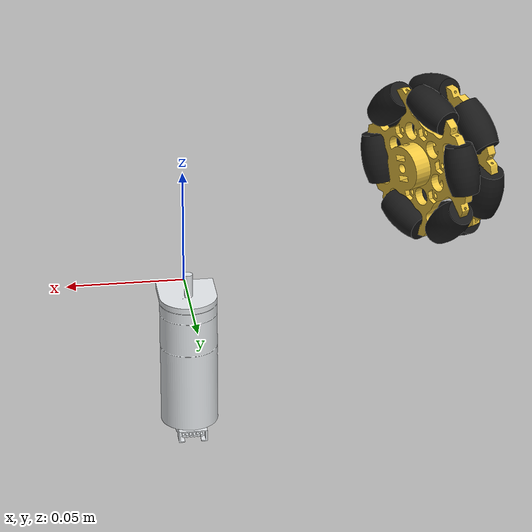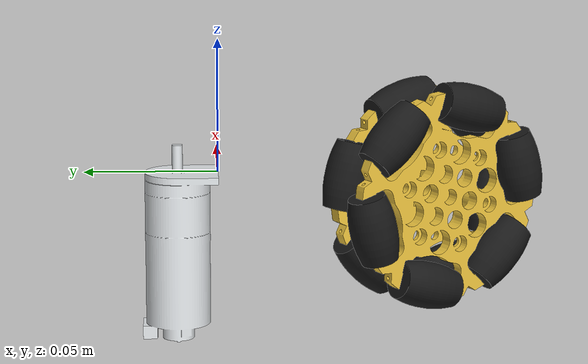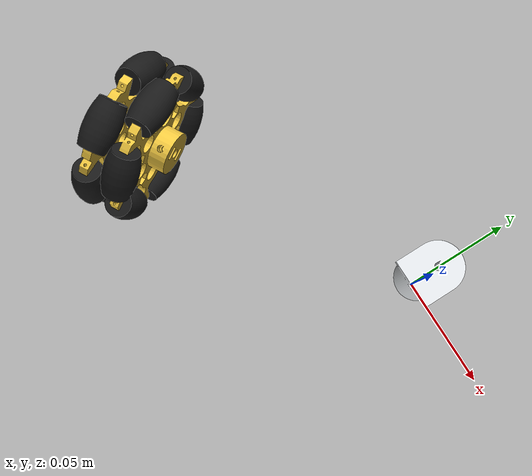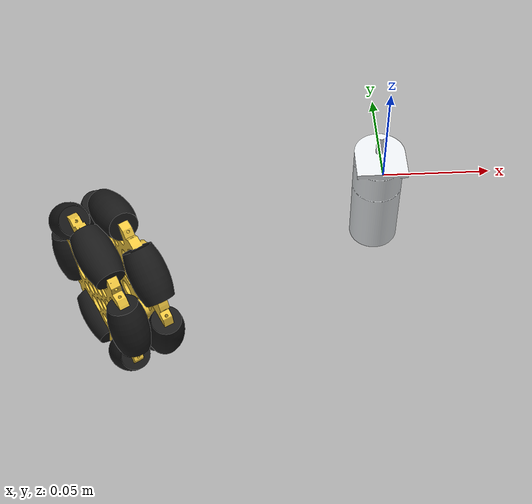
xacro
<?xml version="1.0"?>
<robot xmlns:xacro="http://www.ros.org/wiki/xacro" name="omnibot">
<xacro:include filename="$(find omnibot_description)/urdf/omnibot_gazebo.xacro"/>
<xacro:include filename="$(find omnibot_description)/urdf/omnibot_ros2_control.xacro"/>
<link name="base_footprint"></link>
<joint name="base_footprint_to_base" type="fixed">
<parent link="base_footprint"/>
<child link="motor" />
<origin rpy="0.0 0 0" xyz="0 0 0"/>
</joint>
<link name="motor">
<visual>
<origin xyz="0 0 0" rpy="0 -0 0" />
<geometry>
<mesh filename="package://omnibot_description/meshes/motor.stl"/>
</geometry>
<material name="motor_material">
<color rgba="0.90196078431372550543 0.91764705882352937127 0.92941176470588238168 1.0"/>
</material>
</visual>
<collision>
<origin xyz="0 0 0" rpy="0 -0 0" />
<geometry>
<mesh filename="package://omnibot_description/meshes/motor.stl"/>
</geometry>
</collision>
<inertial>
<origin xyz="-0.083332409879302099531 -0.048114905775283510481 0.01775333870778863371" rpy="0 0 0"/>
<mass value="0.11724467889003906129" />
<inertia ixx="1.7177316862696019069e-05" ixy="-1.3512284026326213212e-05"  ixz="2.9006028519083257192e-07" iyy="3.2785367539480673885e-05" iyz="1.65594967207300257e-07" izz="4.052562608525466729e-05" />
</inertial>
</link>

<link name="wheel">
<visual>
<origin xyz="0 0 0" rpy="0 -0 0" />
<geometry>
<mesh filename="package://omnibot_description/meshes/wheel.stl"/>
</geometry>
<material name="wheel_material">
<color rgba="0.93817637743758997004 0.77716387406765596868 0.24699191181720780985 1.0"/>
</material>
</visual>
<collision>
<origin xyz="0 0 0" rpy="0 -0 0" />
<geometry>
<mesh filename="package://omnibot_description/meshes/wheel.stl"/>
</geometry>
</collision>
<inertial>
<origin xyz="-9.4080772161778185937e-06 -8.7940150929699637965e-06 -0.015171785857257018976" rpy="0 0 0"/>
<mass value="0.019326877652137152558" />
<inertia ixx="5.4075632337239984917e-06" ixy="-8.0312945992185011218e-08"  ixz="-1.2568956473773278438e-09" iyy="5.6885776482218881875e-06" iyz="1.916775893006806247e-09" izz="8.7138700444652767682e-06" />
</inertial>
</link>

<link name="roller">
<visual>
<origin xyz="0 0 0" rpy="0 -0 0" />
<geometry>
<mesh filename="package://omnibot_description/meshes/roller.stl"/>
</geometry>
<material name="roller_material">
<color rgba="0.098039215686274508443 0.098039215686274508443 0.098039215686274508443 1.0"/>
</material>
</visual>
<collision>
<origin xyz="0 0 0" rpy="0 -0 0" />
<geometry>
<mesh filename="package://omnibot_description/meshes/roller.stl"/>
</geometry>
</collision>
<inertial>
<origin xyz="4.0756121985606166103e-11 8.4957113535403680068e-11 2.4283847745025522076e-11" rpy="0 0 0"/>
<mass value="0.0037899803393768713086" />
<inertia ixx="1.8303635244743848899e-07" ixy="4.2716078955510298828e-16"  ixz="-1.7514569824195878747e-15" iyy="1.8303636075213773613e-07" iyz="-3.3429143070510763521e-15" izz="9.80970620806389343e-08" />
</inertial>
</link>

<joint name="roller1_1" type="continuous">
<origin xyz="0.020681564833508855189 -0.02111942119757877559 -0.010000000285350446605" rpy="-2.3666656417924341049 -1.5707963267948408248 0" />
<parent link="wheel" />
<child link="roller" />
<axis xyz="0 0 1"/>
<limit effort="1" velocity="20" />
<joint_properties friction="0.0"/>
</joint>

<link name="roller_2">
<visual>
<origin xyz="0 0 0" rpy="0 -0 0" />
<geometry>
<mesh filename="package://omnibot_description/meshes/roller.stl"/>
</geometry>
<material name="roller_2_material">
<color rgba="0.098039215686274508443 0.098039215686274508443 0.098039215686274508443 1.0"/>
</material>
</visual>
<collision>
<origin xyz="0 0 0" rpy="0 -0 0" />
<geometry>
<mesh filename="package://omnibot_description/meshes/roller.stl"/>
</geometry>
</collision>
<inertial>
<origin xyz="4.0756118516159214149e-11 8.4957103127062837132e-11 2.4283847745025522076e-11" rpy="0 0 0"/>
<mass value="0.0037899803393768713086" />
<inertia ixx="1.8303635244743848899e-07" ixy="4.2716081400933962448e-16"  ixz="-1.7514569930109819052e-15" iyy="1.8303636075213778907e-07" iyz="-3.3429142993269262604e-15" izz="9.8097062080638907831e-08" />
</inertial>
</link>

<joint name="roller1_2" type="continuous">
<origin xyz="-0.0082858436691605717728 -0.028375035936993940611 -0.010000003715208427568" rpy="1.5707963267948643615 0.039422984638921319822 -1.8430676189349126659" />
<parent link="wheel" />
<child link="roller_2" />
<axis xyz="0 0 1"/>
<limit effort="1" velocity="20" />
<joint_properties friction="0.0"/>
</joint>

<link name="roller_3">
<visual>
<origin xyz="0 0 0" rpy="0 -0 0" />
<geometry>
<mesh filename="package://omnibot_description/meshes/roller.stl"/>
</geometry>
<material name="roller_3_material">
<color rgba="0.098039215686274508443 0.098039215686274508443 0.098039215686274508443 1.0"/>
</material>
</visual>
<collision>
<origin xyz="0 0 0" rpy="0 -0 0" />
<geometry>
<mesh filename="package://omnibot_description/meshes/roller.stl"/>
</geometry>
</collision>
<inertial>
<origin xyz="4.0756108107818351826e-11 8.4957117004850644947e-11 2.4283842540855090915e-11" rpy="0 0 0"/>
<mass value="0.0037899803393768713086" />
<inertia ixx="1.8303635244743848899e-07" ixy="4.2716079021680908052e-16"  ixz="-1.7514569817847873628e-15" iyy="1.8303636075213778907e-07" iyz="-3.3429143100435409156e-15" izz="9.80970620806389343e-08" />
</inertial>
</link>

<joint name="roller1_3" type="continuous">
<origin xyz="0.028630754033684657073 0.00735114980477863042 -0.010000000481622278725" rpy="-1.5707963267948972241 -0.47506888631430066461 -2.8902645323988251924" />
<parent link="wheel" />
<child link="roller_3" />
<axis xyz="0 0 1"/>
<limit effort="1" velocity="20" />
<joint_properties friction="0.0"/>
</joint>

<link name="roller_4">
<visual>
<origin xyz="0 0 0" rpy="0 -0 0" />
<geometry>
<mesh filename="package://omnibot_description/meshes/roller.stl"/>
</geometry>
<material name="roller_4_material">
<color rgba="0.098039215686274508443 0.098039215686274508443 0.098039215686274508443 1.0"/>
</material>
</visual>
<collision>
<origin xyz="0 0 0" rpy="0 -0 0" />
<geometry>
<mesh filename="package://omnibot_description/meshes/roller.stl"/>
</geometry>
</collision>
<inertial>
<origin xyz="4.0756121985606166103e-11 8.4957103127062837132e-11 2.4283849479748998053e-11" rpy="0 0 0"/>
<mass value="0.0037899803393768713086" />
<inertia ixx="1.8303635244743848899e-07" ixy="4.2716081400933962448e-16"  ixz="-1.7514569930109819052e-15" iyy="1.8303636075213778907e-07" iyz="-3.3429142993269262604e-15" izz="9.8097062080638907831e-08" />
</inertial>
</link>

<joint name="roller1_4" type="continuous">
<origin xyz="0.0079490519369558119284 0.028470515462359964609 -0.0099999970627584200411" rpy="1.5707963267948643615 0.039422984638921319822 -1.8430676189349126659" />
<parent link="wheel" />
<child link="roller_4" />
<axis xyz="0 0 1"/>
<limit effort="1" velocity="20" />
<joint_properties friction="0.0"/>
</joint>

<link name="roller_5">
<visual>
<origin xyz="0 0 0" rpy="0 -0 0" />
<geometry>
<mesh filename="package://omnibot_description/meshes/roller.stl"/>
</geometry>
<material name="roller_5_material">
<color rgba="0.098039215686274508443 0.098039215686274508443 0.098039215686274508443 1.0"/>
</material>
</visual>
<collision>
<origin xyz="0 0 0" rpy="0 -0 0" />
<geometry>
<mesh filename="package://omnibot_description/meshes/roller.stl"/>
</geometry>
</collision>
<inertial>
<origin xyz="4.0756115046712262196e-11 8.4957103127062824208e-11 2.4283854683919425983e-11" rpy="0 0 0"/>
<mass value="0.0037899803393768713086" />
<inertia ixx="1.8303635244743848899e-07" ixy="4.2716080854478915115e-16"  ixz="-1.7514569891076034829e-15" iyy="1.8303636075213773613e-07" iyz="-3.3429142971992106269e-15" izz="9.80970620806389343e-08" />
</inertial>
</link>

<joint name="roller1_5" type="continuous">
<origin xyz="-0.0079173874319016183249 0.028356888222940322686 -0.024199999101467722928" rpy="1.5707963267948528152 -0.035629031643070047108 1.8430678811939340545" />
<parent link="wheel" />
<child link="roller_5" />
<axis xyz="0 0 1"/>
<limit effort="1" velocity="20" />
<joint_properties friction="0.0"/>
</joint>

<link name="roller_6">
<visual>
<origin xyz="0 0 0" rpy="0 -0 0" />
<geometry>
<mesh filename="package://omnibot_description/meshes/roller.stl"/>
</geometry>
<material name="roller_6_material">
<color rgba="0.098039215686274508443 0.098039215686274508443 0.098039215686274508443 1.0"/>
</material>
</visual>
<collision>
<origin xyz="0 0 0" rpy="0 -0 0" />
<geometry>
<mesh filename="package://omnibot_description/meshes/roller.stl"/>
</geometry>
</collision>
<inertial>
<origin xyz="4.0756108324658792785e-11 8.4957130882638452761e-11 2.4283856418642898729e-11" rpy="0 0 0"/>
<mass value="0.0037899803393768713086" />
<inertia ixx="1.8303635244743843605e-07" ixy="4.2716084048573347974e-16"  ixz="-1.7514569913609862364e-15" iyy="1.8303636075213778907e-07" iyz="-3.3429143316136009109e-15" izz="9.80970620806389343e-08" />
</inertial>
</link>

<joint name="roller1_6" type="continuous">
<origin xyz="-0.020681651273562914189 0.02111933866479353411 -0.010000000622266469463" rpy="1.5707963267948510389 0.3237658697658820639 -0.79586931499757518349" />
<parent link="wheel" />
<child link="roller_6" />
<axis xyz="0 0 1"/>
<limit effort="1" velocity="20" />
<joint_properties friction="0.0"/>
</joint>

<link name="roller_7">
<visual>
<origin xyz="0 0 0" rpy="0 -0 0" />
<geometry>
<mesh filename="package://omnibot_description/meshes/roller.stl"/>
</geometry>
<material name="roller_7_material">
<color rgba="0.098039215686274508443 0.098039215686274508443 0.098039215686274508443 1.0"/>
</material>
</visual>
<collision>
<origin xyz="0 0 0" rpy="0 -0 0" />
<geometry>
<mesh filename="package://omnibot_description/meshes/roller.stl"/>
</geometry>
</collision>
<inertial>
<origin xyz="4.0756108107818358288e-11 8.4957089249275029318e-11 2.4283846010302052562e-11" rpy="0 0 0"/>
<mass value="0.0037899803393768713086" />
<inertia ixx="1.8303635244743848899e-07" ixy="4.27160807953453889e-16"  ixz="-1.7514569860326745559e-15" iyy="1.8303636075213778907e-07" iyz="-3.3429143076502848406e-15" izz="9.809706208063898724e-08" />
</inertial>
</link>

<joint name="roller1_7" type="continuous">
<origin xyz="-0.028516458158707243264 0.0073218567028522536788 -0.02419999957345192465" rpy="1.5707963267947924191 0.4998755173783210326 2.8902650095730839652" />
<parent link="wheel" />
<child link="roller_7" />
<axis xyz="0 0 1"/>
<limit effort="1" velocity="20" />
<joint_properties friction="0.0"/>
</joint>

<link name="roller_8">
<visual>
<origin xyz="0 0 0" rpy="0 -0 0" />
<geometry>
<mesh filename="package://omnibot_description/meshes/roller.stl"/>
</geometry>
<material name="roller_8_material">
<color rgba="0.098039215686274508443 0.098039215686274508443 0.098039215686274508443 1.0"/>
</material>
</visual>
<collision>
<origin xyz="0 0 0" rpy="0 -0 0" />
<geometry>
<mesh filename="package://omnibot_description/meshes/roller.stl"/>
</geometry>
</collision>
<inertial>
<origin xyz="4.0756115046712255733e-11 8.4957103127062824208e-11 2.4283852949195953238e-11" rpy="0 0 0"/>
<mass value="0.0037899803393768713086" />
<inertia ixx="1.8303635244743848899e-07" ixy="4.2716078518960338886e-16"  ixz="-1.7514569807358372422e-15" iyy="1.8303636075213773613e-07" iyz="-3.3429142987394990152e-15" izz="9.80970620806389343e-08" />
</inertial>
</link>

<joint name="roller1_8" type="continuous">
<origin xyz="-0.02851643393617246669 -0.0073217973661822786241 -0.010000001453654761008" rpy="-1.5707963267947111508 -0.47506888631359656117 -2.8902645323989122339" />
<parent link="wheel" />
<child link="roller_8" />
<axis xyz="0 0 1"/>
<limit effort="1" velocity="20" />
<joint_properties friction="0.0"/>
</joint>

<link name="roller_9">
<visual>
<origin xyz="0 0 0" rpy="0 -0 0" />
<geometry>
<mesh filename="package://omnibot_description/meshes/roller.stl"/>
</geometry>
<material name="roller_9_material">
<color rgba="0.098039215686274508443 0.098039215686274508443 0.098039215686274508443 1.0"/>
</material>
</visual>
<collision>
<origin xyz="0 0 0" rpy="0 -0 0" />
<geometry>
<mesh filename="package://omnibot_description/meshes/roller.stl"/>
</geometry>
</collision>
<inertial>
<origin xyz="4.0756108107818358288e-11 8.4957103127062837132e-11 2.4283852949195953238e-11" rpy="0 0 0"/>
<mass value="0.0037899803393768713086" />
<inertia ixx="1.8303635244743848899e-07" ixy="4.2716081252639028129e-16"  ixz="-1.7514569804702362556e-15" iyy="1.8303636075213778907e-07" iyz="-3.3429142988320809143e-15" izz="9.80970620806389343e-08" />
</inertial>
</link>

<joint name="roller1_9" type="continuous">
<origin xyz="-0.020599082119815405323 -0.021035064443091409936 -0.024199998418290208368" rpy="1.5707963267949525132 -0.33636312788316474753 0.79586976703607825723" />
<parent link="wheel" />
<child link="roller_9" />
<axis xyz="0 0 1"/>
<limit effort="1" velocity="20" />
<joint_properties friction="0.0"/>
</joint>

<link name="roller_10">
<visual>
<origin xyz="0 0 0" rpy="0 -0 0" />
<geometry>
<mesh filename="package://omnibot_description/meshes/roller.stl"/>
</geometry>
<material name="roller_10_material">
<color rgba="0.098039215686274508443 0.098039215686274508443 0.098039215686274508443 1.0"/>
</material>
</visual>
<collision>
<origin xyz="0 0 0" rpy="0 -0 0" />
<geometry>
<mesh filename="package://omnibot_description/meshes/roller.stl"/>
</geometry>
</collision>
<inertial>
<origin xyz="4.0756118516159207687e-11 8.4957075371487221503e-11 2.4283849479749001284e-11" rpy="0 0 0"/>
<mass value="0.0037899803393768713086" />
<inertia ixx="1.8303635244743843605e-07" ixy="4.2716080311549494243e-16"  ixz="-1.7514569794927228148e-15" iyy="1.8303636075213778907e-07" iyz="-3.3429142912277513e-15" izz="9.80970620806389343e-08" />
</inertial>
</link>

<joint name="roller1_10" type="continuous">
<origin xyz="0.0079173979793267165728 -0.028356884977344593013 -0.024199999508979525009" rpy="1.5707963267949405228 0.03562903164307248266 -1.2985247723958603938" />
<parent link="wheel" />
<child link="roller_10" />
<axis xyz="0 0 1"/>
<limit effort="1" velocity="20" />
<joint_properties friction="0.0"/>
</joint>

<link name="roller_11">
<visual>
<origin xyz="0 0 0" rpy="0 -0 0" />
<geometry>
<mesh filename="package://omnibot_description/meshes/roller.stl"/>
</geometry>
<material name="roller_11_material">
<color rgba="0.098039215686274508443 0.098039215686274508443 0.098039215686274508443 1.0"/>
</material>
</visual>
<collision>
<origin xyz="0 0 0" rpy="0 -0 0" />
<geometry>
<mesh filename="package://omnibot_description/meshes/roller.stl"/>
</geometry>
</collision>
<inertial>
<origin xyz="4.0756121985606172565e-11 8.4957103127062837132e-11 2.4283852949195946775e-11" rpy="0 0 0"/>
<mass value="0.0037899803393768713086" />
<inertia ixx="1.8303635244743859487e-07" ixy="4.2716080665760632879e-16"  ixz="-1.7514569880785997103e-15" iyy="1.8303636075213778907e-07" iyz="-3.3429143104060729886e-15" izz="9.80970620806389343e-08" />
</inertial>
</link>

<joint name="roller1_11" type="continuous">
<origin xyz="0.028516471920458755923 -0.0073217858682538168591 -0.024199999328584992364" rpy="1.5707963267949687225 0.49987551737898944237 2.8902650095731661217" />
<parent link="wheel" />
<child link="roller_11" />
<axis xyz="0 0 1"/>
<limit effort="1" velocity="20" />
<joint_properties friction="0.0"/>
</joint>

<link name="roller_12">
<visual>
<origin xyz="0 0 0" rpy="0 -0 0" />
<geometry>
<mesh filename="package://omnibot_description/meshes/roller.stl"/>
</geometry>
<material name="roller_12_material">
<color rgba="0.098039215686274508443 0.098039215686274508443 0.098039215686274508443 1.0"/>
</material>
</visual>
<collision>
<origin xyz="0 0 0" rpy="0 -0 0" />
<geometry>
<mesh filename="package://omnibot_description/meshes/roller.stl"/>
</geometry>
</collision>
<inertial>
<origin xyz="4.0756115914074019571e-11 8.4957130882638439836e-11 2.428385121447247403e-11" rpy="0 0 0"/>
<mass value="0.0037899803393768713086" />
<inertia ixx="1.8303635244743859487e-07" ixy="4.2716081974557339914e-16"  ixz="-1.7514569668193931157e-15" iyy="1.8303636075213773613e-07" iyz="-3.3429143129522359451e-15" izz="9.80970620806389343e-08" />
</inertial>
</link>

<joint name="roller1_" type="continuous">
<origin xyz="0.020599080645985489574 0.021035055769852671614 -0.024199995144406849512" rpy="1.5707963267948636954 -0.33636312788368860627 0.7958697670360835863" />
<parent link="wheel" />
<child link="roller_12" />
<axis xyz="0 0 1"/>
<limit effort="1" velocity="20" />
<joint_properties friction="0.0"/>
</joint>

<joint name="wheel1" type="continuous">
<origin xyz="-0.10382679491924297344 -0.059944427995721236146 0.017831400000000004191" rpy="1.570796326794896558 1.1830378826286079221e-16 2.0943951023931974831" />
<parent link="motor" />
<child link="wheel" />
<axis xyz="0 0 1"/>
<limit effort="1" velocity="20" />
<joint_properties friction="0.0"/>
</joint>

</robot>
